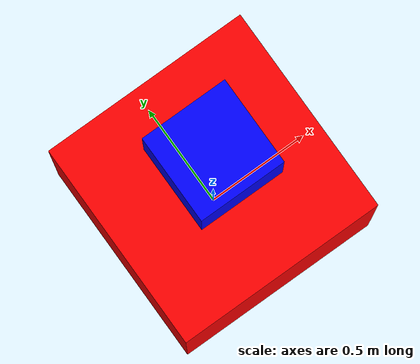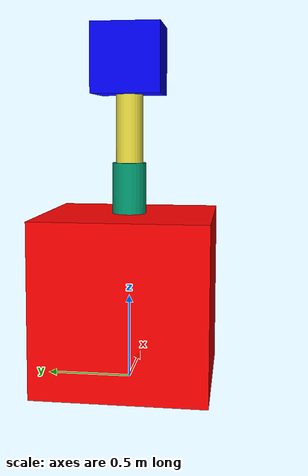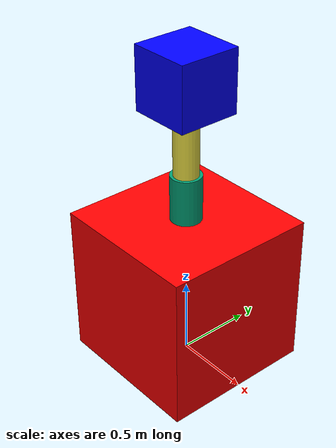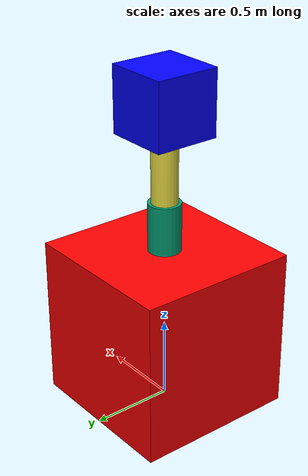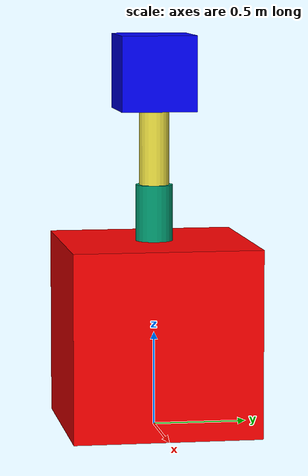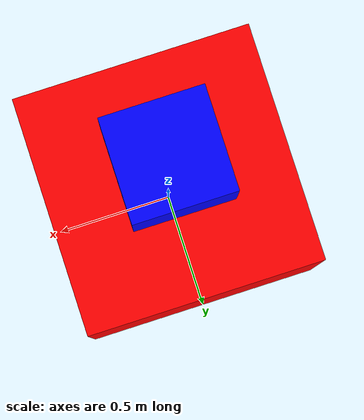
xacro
<?xml version="1.0"?>
<robot name="my_first_robot" xmlns:xacro="http://www.ros.org/wiki/xacro">

  <xacro:include filename="robot_core.xacro"/>
  <xacro:robot_core/>

  <ros2_control name="MyRobot" type="system">
    <hardware>
      <plugin>mock_components/GenericSystem</plugin>
    </hardware>

    <joint name="shoulder_joint">
      <command_interface name="position"/>
      <state_interface name="position"/>
      <state_interface name="velocity"/>
    </joint>

    <joint name="elbow_link_joint">
      <command_interface name="position"/>
      <state_interface name="position"/>
      <state_interface name="velocity"/>
    </joint>

    <joint name="wrist_joint">
      <command_interface name="position"/>
      <state_interface name="position"/>
      <state_interface name="velocity"/>
    </joint>

  </ros2_control>

</robot>

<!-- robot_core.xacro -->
<robot xmlns:xacro="http://www.ros.org/wiki/xacro">

  <xacro:macro name="robot_core">

    <!-- ================= BASE ================= -->
    <link name="base_link"/>

    <link name="chassis_link">
      <visual>
        <geometry>
          <box size="1 1 1"/>
        </geometry>
        <material name="red">
          <color rgba="1 0 0 1"/>
        </material>
      </visual>
    </link>

    <joint name="base_to_chassis" type="fixed">
      <parent link="base_link"/>
      <child link="chassis_link"/>
      <origin xyz="0 0 0.5"/>
    </joint>

    <!-- ================= SHOULDER ================= -->
    <link name="shoulder">
      <visual>
        <origin xyz="0 0 0.15"/>
        <geometry>
          <cylinder length="0.3" radius="0.1"/>
        </geometry>
      </visual>
    </link>

    <joint name="shoulder_joint" type="revolute">
      <parent link="chassis_link"/>
      <child link="shoulder"/>
      <origin xyz="0 0 0.5"/>
      <axis xyz="0 0 1"/>
      <limit lower="-3.14" upper="3.14" effort="10" velocity="1"/>
    </joint>

    <!-- ================= ELBOW ================= -->
    <link name="elbow_link">
      <visual>
        <origin xyz="0 0 0.2"/>
        <geometry>
          <cylinder length="0.4" radius="0.08"/>
        </geometry>
      </visual>
    </link>

    <joint name="elbow_link_joint" type="revolute">
      <parent link="shoulder"/>
      <child link="elbow_link"/>
      <origin xyz="0 0 0.3"/>
      <axis xyz="0 0 1"/>
      <limit lower="-3.14" upper="3.14" effort="10" velocity="1"/>
    </joint>

    <!-- ================= WRIST ================= -->
    <link name="wrist_link">
      <visual>
        <origin xyz="0 0 0.2"/>
        <geometry>
          <box size="0.4 0.4 0.4"/>
        </geometry>
        <material name="blue">
          <color rgba="0 0 1 1"/>
        </material>
      </visual>

      <collision>
        <origin xyz="0 0 0.2"/>
        <geometry>
          <box size="0.4 0.4 0.4"/>
        </geometry>
      </collision>
    </link>

    <joint name="wrist_joint" type="revolute">
      <parent link="elbow_link"/>
      <child link="wrist_link"/>
      <!-- 🔥 FIX: NO VARIABLE -->
      <origin xyz="0 0 0.4"/>
      <axis xyz="1 0 0"/>
      <limit lower="-1.57" upper="1.57" effort="10" velocity="1"/>
    </joint>

  </xacro:macro>

</robot>
